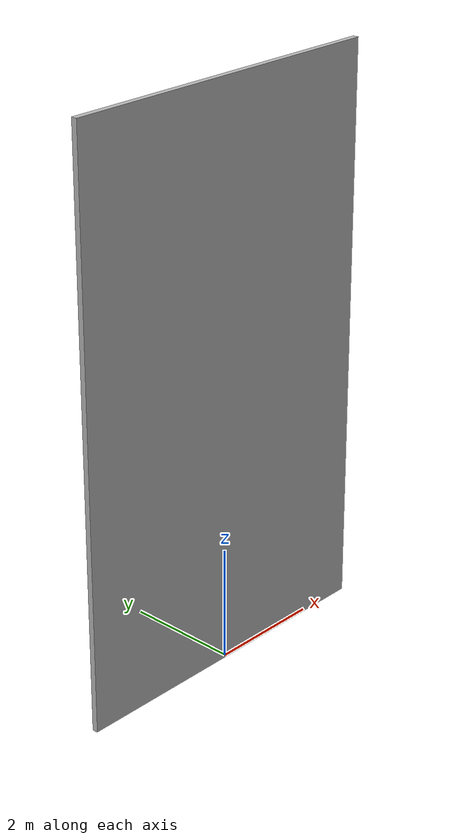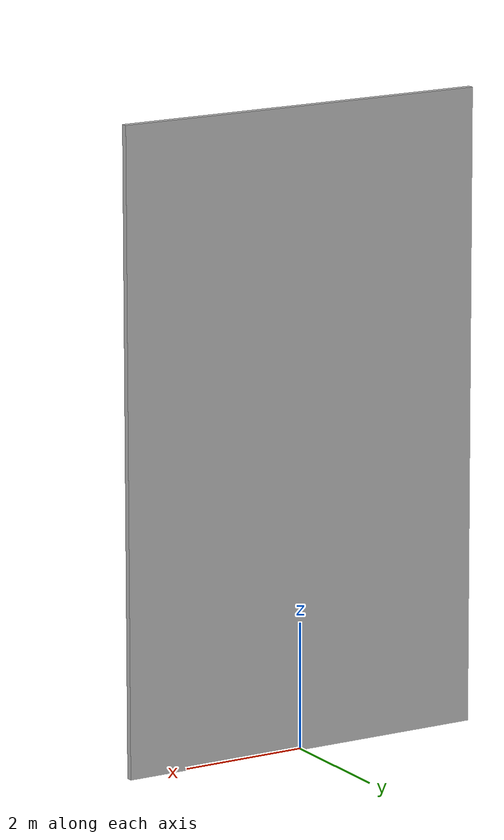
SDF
<?xml version="1.0" ?>

<sdf version="1.5">
<model name='wood_600_10_1000'>
      <static>1</static>
      <link name="link">
        <pose>0 0 5.0 0 0 0</pose>

        <visual name="visual">
          <geometry>
            <box>
              <size>6.0 0.1 10.0</size>
            </box>
          </geometry>
          <material>
            <script>
              <uri>model:///home/stibipet/mrs_workspace/src/radiation_nodes/gazebo_rad_obstacle/gazebo_models/materials/scripts</uri>
              <uri>model:///home/stibipet/mrs_workspace/src/radiation_nodes/gazebo_rad_obstacle/gazebo_models/materials/textures/</uri>
              <name>wood/Image</name>
            </script>
          </material>
        </visual>

      </link>

      <plugin name='wood' filename='libgazebo_rad_obstacle.so'>
        <depth>6.0</depth>
        <width>0.1</width>
        <height>10.0</height>
        <material>wood</material>
        <density>0.7</density> <!-- g/cm^3 -->
        <mac60kev>0.1907</mac60kev> <!-- cm^2/g -->
        <mac600kev>0.0807</mac600kev> <!-- cm^2/g -->
      </plugin>

    </model>
  </sdf>
